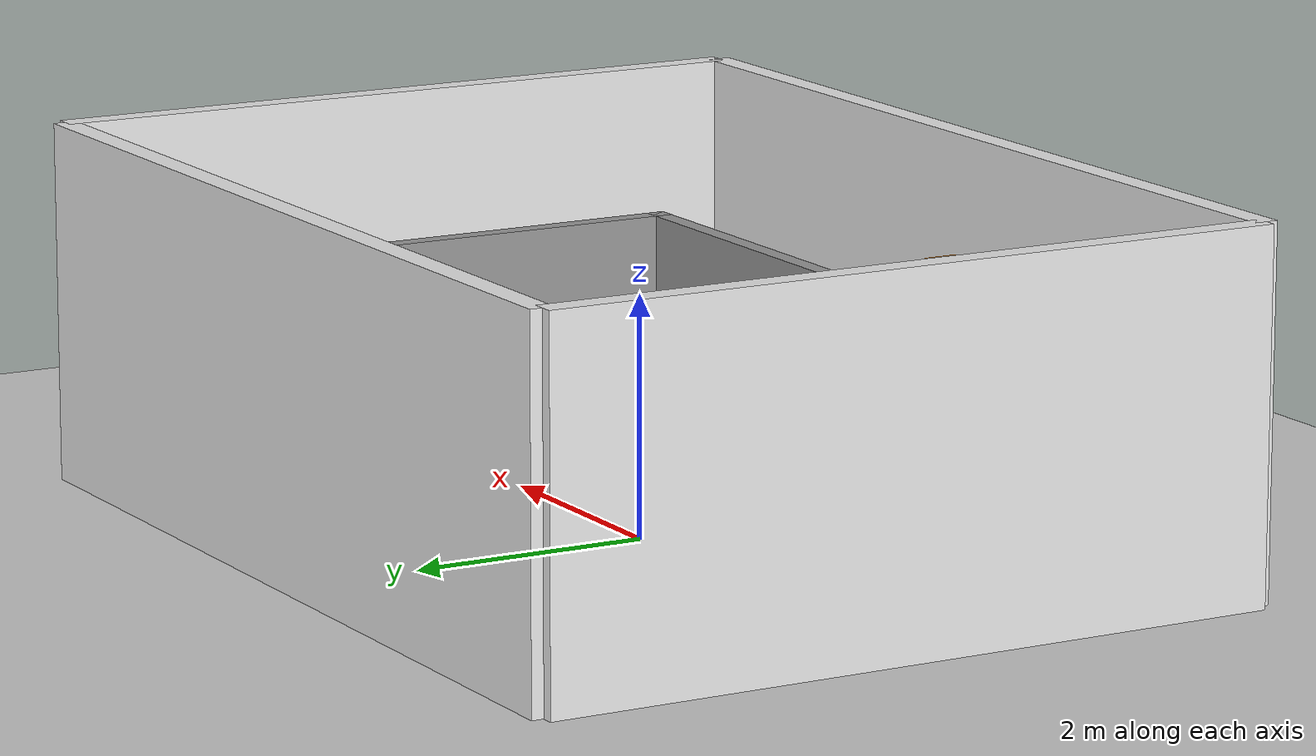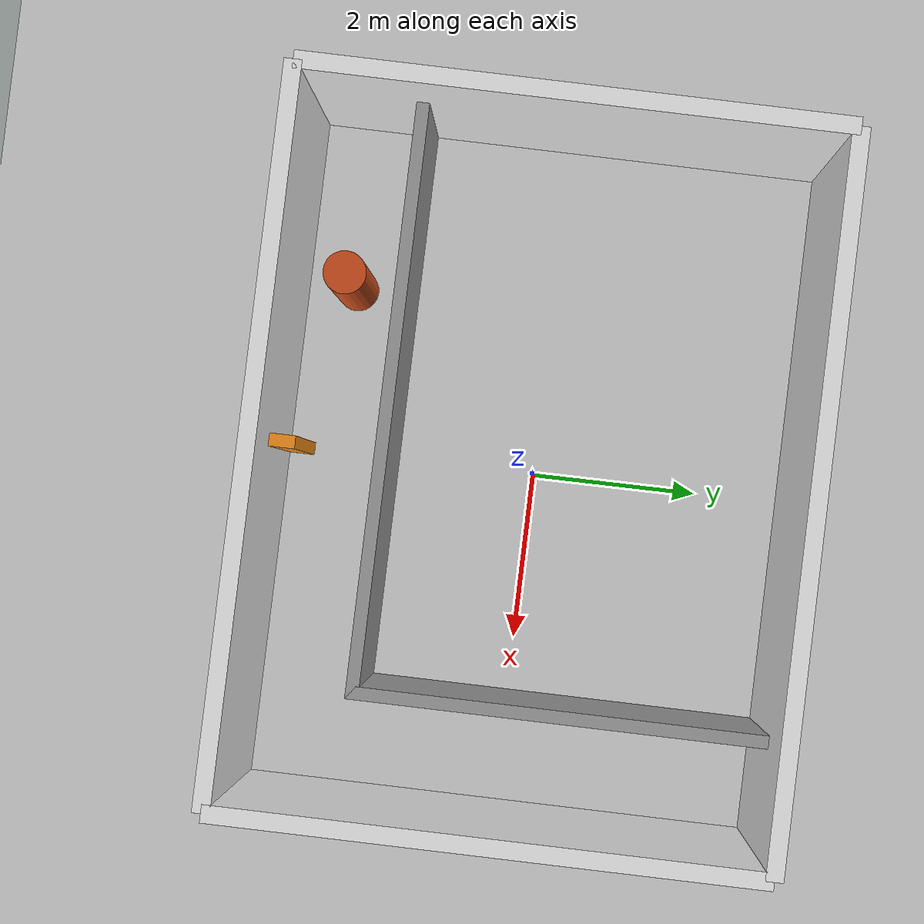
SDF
<?xml version="1.0"?>
<sdf version="1.6">
  <world name="narrow_room">

    <physics name="default_physics" default="0" type="ode">
      <max_step_size>0.001</max_step_size>
      <real_time_factor>1.0</real_time_factor>
      <real_time_update_rate>1000</real_time_update_rate>
    </physics>

    <plugin name="gazebo_ros_state" filename="libgazebo_ros_state.so">
      <ros><namespace>/gazebo</namespace></ros>
      <update_rate>10.0</update_rate>
    </plugin>

    <light name="sun" type="directional">
      <cast_shadows>true</cast_shadows>
      <pose>0 0 10 0 0 0</pose>
      <diffuse>0.9 0.9 0.9 1</diffuse>
      <specular>0.3 0.3 0.3 1</specular>
      <direction>-0.5 0.1 -0.9</direction>
    </light>

    <model name="ground_plane">
      <static>true</static>
      <link name="link">
        <collision name="collision">
          <geometry><plane><normal>0 0 1</normal></plane></geometry>
          <surface><friction><ode><mu>100</mu><mu2>50</mu2></ode></friction></surface>
        </collision>
        <visual name="visual">
          <cast_shadows>false</cast_shadows>
          <geometry><plane><normal>0 0 1</normal><size>16 16</size></plane></geometry>
          <material><script><name>Gazebo/Grey</name></script></material>
        </visual>
      </link>
    </model>

    <!-- 外周壁 (内寸 8.0 × 6.0) -->
    <model name="wall_south">
      <static>true</static><pose>0 -3.1 1.5 0 0 0</pose>
      <link name="link">
        <collision name="col"><geometry><box><size>8.2 0.2 3.0</size></box></geometry></collision>
        <visual name="vis"><geometry><box><size>8.2 0.2 3.0</size></box></geometry>
          <material><script><name>Gazebo/White</name></script></material></visual>
      </link>
    </model>
    <model name="wall_north">
      <static>true</static><pose>0 3.1 1.5 0 0 0</pose>
      <link name="link">
        <collision name="col"><geometry><box><size>8.2 0.2 3.0</size></box></geometry></collision>
        <visual name="vis"><geometry><box><size>8.2 0.2 3.0</size></box></geometry>
          <material><script><name>Gazebo/White</name></script></material></visual>
      </link>
    </model>
    <model name="wall_west">
      <static>true</static><pose>-4.1 0 1.5 0 0 0</pose>
      <link name="link">
        <collision name="col"><geometry><box><size>0.2 6.2 3.0</size></box></geometry></collision>
        <visual name="vis"><geometry><box><size>0.2 6.2 3.0</size></box></geometry>
          <material><script><name>Gazebo/White</name></script></material></visual>
      </link>
    </model>
    <model name="wall_east">
      <static>true</static><pose>4.1 0 1.5 0 0 0</pose>
      <link name="link">
        <collision name="col"><geometry><box><size>0.2 6.2 3.0</size></box></geometry></collision>
        <visual name="vis"><geometry><box><size>0.2 6.2 3.0</size></box></geometry>
          <material><script><name>Gazebo/White</name></script></material></visual>
      </link>
    </model>

    <!-- L 字通路の内壁 -->
    <!-- 水平通路の北側内壁: x -4.0〜2.8, 南面 y=-1.8 (通路幅 1.2) -->
    <model name="wall_inner_h">
      <static>true</static><pose>-0.6 -1.725 1.0 0 0 0</pose>
      <link name="link">
        <collision name="col"><geometry><box><size>6.8 0.15 2.0</size></box></geometry></collision>
        <visual name="vis"><geometry><box><size>6.8 0.15 2.0</size></box></geometry>
          <material><script><name>Gazebo/Grey</name></script></material></visual>
      </link>
    </model>
    <!-- 垂直通路の西側内壁: y -1.8〜3.0, 東面 x=2.8 (通路幅 1.2) -->
    <model name="wall_inner_v">
      <static>true</static><pose>2.725 0.6 1.0 0 0 0</pose>
      <link name="link">
        <collision name="col"><geometry><box><size>0.15 4.8 2.0</size></box></geometry></collision>
        <visual name="vis"><geometry><box><size>0.15 4.8 2.0</size></box></geometry>
          <material><script><name>Gazebo/Grey</name></script></material></visual>
      </link>
    </model>

    <!-- 狭窄部: 南壁から 0.3 m のスタブ → 残り幅 0.9 -->
    <model name="pinch_stub">
      <static>true</static><pose>0.0 -2.85 1.0 0 0 0</pose>
      <link name="link">
        <collision name="col"><geometry><box><size>0.15 0.3 2.0</size></box></geometry></collision>
        <visual name="vis"><geometry><box><size>0.15 0.3 2.0</size></box></geometry>
          <material><script><name>Gazebo/Orange</name></script></material></visual>
      </link>
    </model>

    <!-- 試験員模擬シリンダー (person_mover が動かす) -->
    <model name="inspector">
      <static>true</static>
      <pose>-2.0 -2.4 0.9 0 0 0</pose>
      <link name="link">
        <collision name="col">
          <geometry><cylinder><radius>0.25</radius><length>1.8</length></cylinder></geometry>
        </collision>
        <visual name="vis">
          <geometry><cylinder><radius>0.25</radius><length>1.8</length></cylinder></geometry>
          <material>
            <ambient>0.8 0.3 0.1 1</ambient>
            <diffuse>0.8 0.3 0.1 1</diffuse>
          </material>
        </visual>
      </link>
    </model>

  </world>
</sdf>
